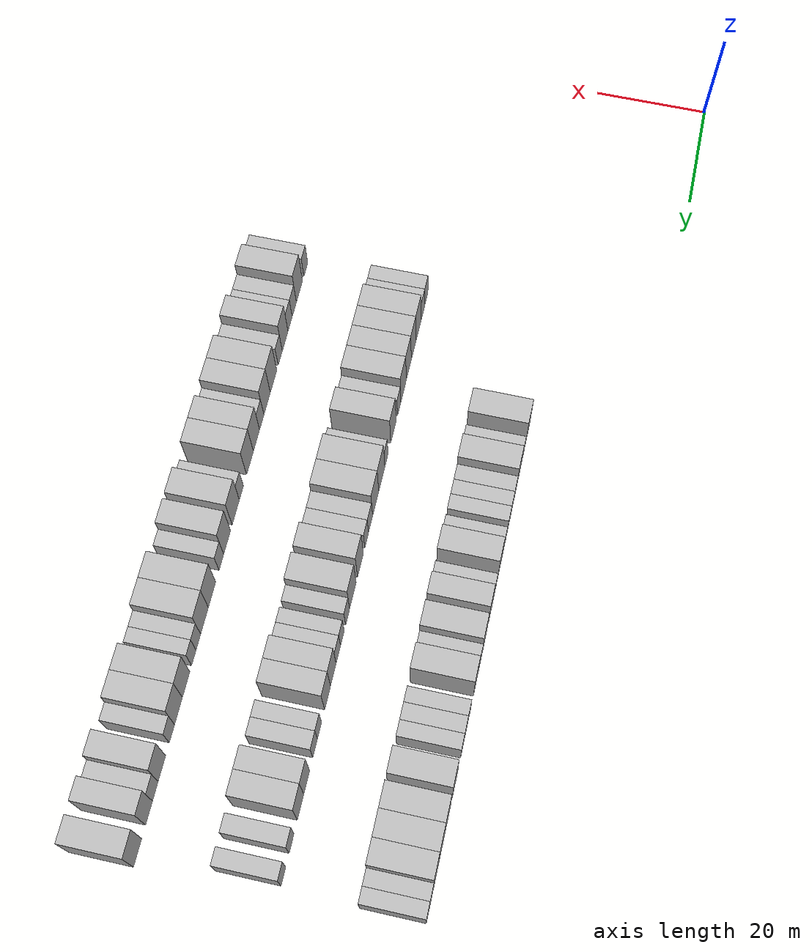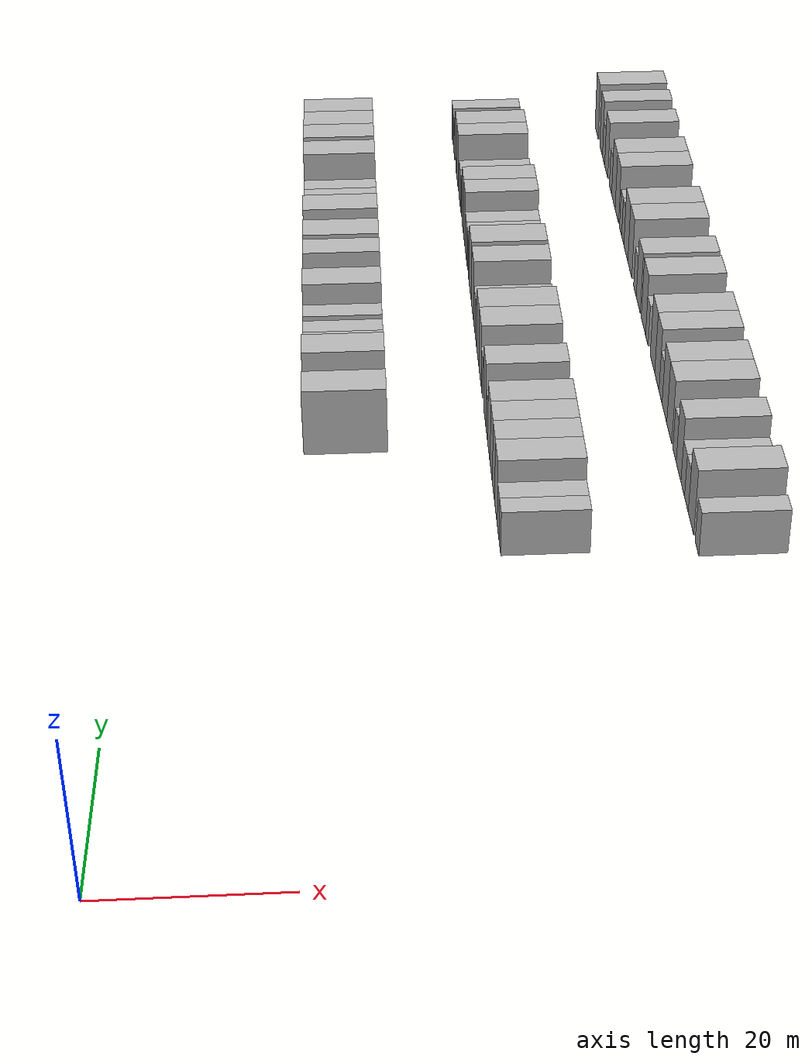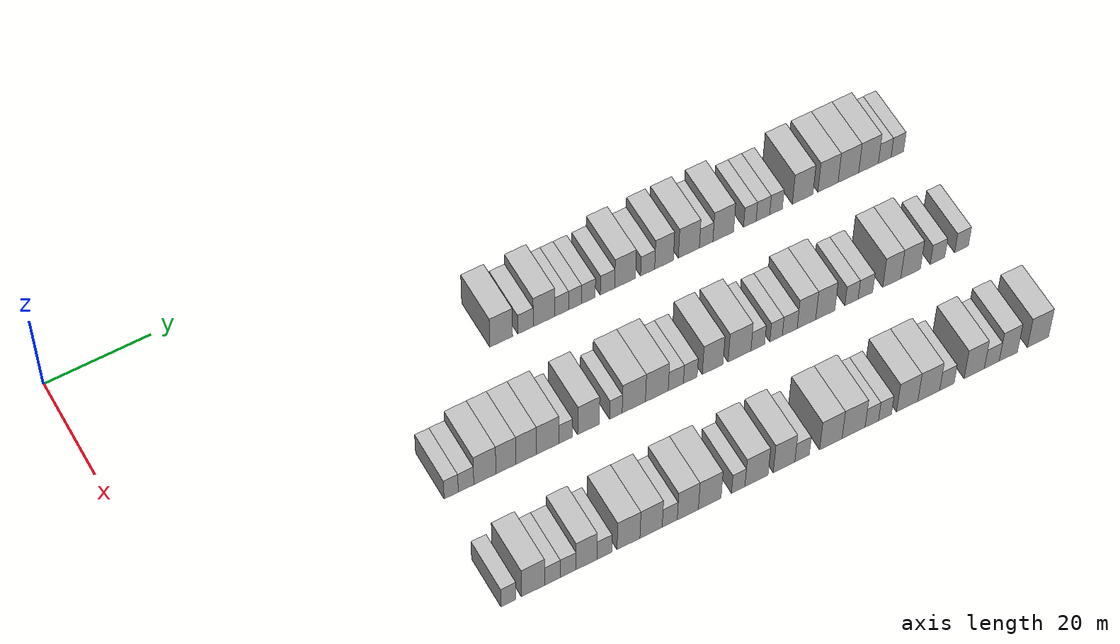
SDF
<sdf version="1.6">
 <world name="default">
  <model name="building_78">
   <static>1</static>
   <pose>25.0000 71.0234 0 0.000000 0.000000 0.000000</pose>
   <link name="link">
    <pose>0 0 4.50 0 0 0</pose>
    <collision name="collision"><geometry><box><size>10.0000 4.3698 9.0000</size></box></geometry></collision>
    <visual name="visual">
     <cast_shadows>0</cast_shadows>
     <geometry><box><size>10.0000 4.3698 9.0000</size></box></geometry>
     <material>
      <script>
       <uri>model://HANNAS_wall/materials/scripts</uri>
       <uri>model://HANNAS_wall/materials/textures</uri>
       <name>vrc/HANNAS_wall</name>
      </script>
     </material>
    </visual>
   </link>
  </model>
  <model name="building_79">
   <static>1</static>
   <pose>25.0000 75.6994 0 0.000000 0.000000 0.000000</pose>
   <link name="link">
    <pose>0 0 3.00 0 0 0</pose>
    <collision name="collision"><geometry><box><size>10.0000 2.9822 6.0000</size></box></geometry></collision>
    <visual name="visual">
     <cast_shadows>0</cast_shadows>
     <geometry><box><size>10.0000 2.9822 6.0000</size></box></geometry>
     <material>
      <script>
       <uri>model://HANNAS_wall/materials/scripts</uri>
       <uri>model://HANNAS_wall/materials/textures</uri>
       <name>vrc/HANNAS_wall</name>
      </script>
     </material>
    </visual>
   </link>
  </model>
  <model name="building_80">
   <static>1</static>
   <pose>25.0000 79.2633 0 0.000000 0.000000 0.000000</pose>
   <link name="link">
    <pose>0 0 4.50 0 0 0</pose>
    <collision name="collision"><geometry><box><size>10.0000 4.1458 9.0000</size></box></geometry></collision>
    <visual name="visual">
     <cast_shadows>0</cast_shadows>
     <geometry><box><size>10.0000 4.1458 9.0000</size></box></geometry>
     <material>
      <script>
       <uri>model://HANNAS_wall/materials/scripts</uri>
       <uri>model://HANNAS_wall/materials/textures</uri>
       <name>vrc/HANNAS_wall</name>
      </script>
     </material>
    </visual>
   </link>
  </model>
  <model name="building_81">
   <static>1</static>
   <pose>25.0000 82.6804 0 0.000000 0.000000 0.000000</pose>
   <link name="link">
    <pose>0 0 3.00 0 0 0</pose>
    <collision name="collision"><geometry><box><size>10.0000 2.6883 6.0000</size></box></geometry></collision>
    <visual name="visual">
     <cast_shadows>0</cast_shadows>
     <geometry><box><size>10.0000 2.6883 6.0000</size></box></geometry>
     <material>
      <script>
       <uri>model://HANNAS_wall/materials/scripts</uri>
       <uri>model://HANNAS_wall/materials/textures</uri>
       <name>vrc/HANNAS_wall</name>
      </script>
     </material>
    </visual>
   </link>
  </model>
  <model name="building_82">
   <static>1</static>
   <pose>25.0000 85.3012 0 0.000000 0.000000 0.000000</pose>
   <link name="link">
    <pose>0 0 3.00 0 0 0</pose>
    <collision name="collision"><geometry><box><size>10.0000 2.5534 6.0000</size></box></geometry></collision>
    <visual name="visual">
     <cast_shadows>0</cast_shadows>
     <geometry><box><size>10.0000 2.5534 6.0000</size></box></geometry>
     <material>
      <script>
       <uri>model://HANNAS_wall/materials/scripts</uri>
       <uri>model://HANNAS_wall/materials/textures</uri>
       <name>vrc/HANNAS_wall</name>
      </script>
     </material>
    </visual>
   </link>
  </model>
  <model name="building_83">
   <static>1</static>
   <pose>25.0000 87.8974 0 0.000000 0.000000 0.000000</pose>
   <link name="link">
    <pose>0 0 3.00 0 0 0</pose>
    <collision name="collision"><geometry><box><size>10.0000 2.6389 6.0000</size></box></geometry></collision>
    <visual name="visual">
     <cast_shadows>0</cast_shadows>
     <geometry><box><size>10.0000 2.6389 6.0000</size></box></geometry>
     <material>
      <script>
       <uri>model://HANNAS_wall/materials/scripts</uri>
       <uri>model://HANNAS_wall/materials/textures</uri>
       <name>vrc/HANNAS_wall</name>
      </script>
     </material>
    </visual>
   </link>
  </model>
  <model name="building_84">
   <static>1</static>
   <pose>25.0000 91.6191 0 0.000000 0.000000 0.000000</pose>
   <link name="link">
    <pose>0 0 3.00 0 0 0</pose>
    <collision name="collision"><geometry><box><size>10.0000 2.8044 6.0000</size></box></geometry></collision>
    <visual name="visual">
     <cast_shadows>0</cast_shadows>
     <geometry><box><size>10.0000 2.8044 6.0000</size></box></geometry>
     <material>
      <script>
       <uri>model://HANNAS_wall/materials/scripts</uri>
       <uri>model://HANNAS_wall/materials/textures</uri>
       <name>vrc/HANNAS_wall</name>
      </script>
     </material>
    </visual>
   </link>
  </model>
  <model name="building_85">
   <static>1</static>
   <pose>25.0000 95.0656 0 0.000000 0.000000 0.000000</pose>
   <link name="link">
    <pose>0 0 4.50 0 0 0</pose>
    <collision name="collision"><geometry><box><size>10.0000 4.0885 9.0000</size></box></geometry></collision>
    <visual name="visual">
     <cast_shadows>0</cast_shadows>
     <geometry><box><size>10.0000 4.0885 9.0000</size></box></geometry>
     <material>
      <script>
       <uri>model://HANNAS_wall/materials/scripts</uri>
       <uri>model://HANNAS_wall/materials/textures</uri>
       <name>vrc/HANNAS_wall</name>
      </script>
     </material>
    </visual>
   </link>
  </model>
  <model name="building_86">
   <static>1</static>
   <pose>25.0000 99.4901 0 0.000000 0.000000 0.000000</pose>
   <link name="link">
    <pose>0 0 3.00 0 0 0</pose>
    <collision name="collision"><geometry><box><size>10.0000 2.7606 6.0000</size></box></geometry></collision>
    <visual name="visual">
     <cast_shadows>0</cast_shadows>
     <geometry><box><size>10.0000 2.7606 6.0000</size></box></geometry>
     <material>
      <script>
       <uri>model://HANNAS_wall/materials/scripts</uri>
       <uri>model://HANNAS_wall/materials/textures</uri>
       <name>vrc/HANNAS_wall</name>
      </script>
     </material>
    </visual>
   </link>
  </model>
  <model name="building_87">
   <static>1</static>
   <pose>25.0000 102.7119 0 0.000000 0.000000 0.000000</pose>
   <link name="link">
    <pose>0 0 4.50 0 0 0</pose>
    <collision name="collision"><geometry><box><size>10.0000 3.6831 9.0000</size></box></geometry></collision>
    <visual name="visual">
     <cast_shadows>0</cast_shadows>
     <geometry><box><size>10.0000 3.6831 9.0000</size></box></geometry>
     <material>
      <script>
       <uri>model://HANNAS_wall/materials/scripts</uri>
       <uri>model://HANNAS_wall/materials/textures</uri>
       <name>vrc/HANNAS_wall</name>
      </script>
     </material>
    </visual>
   </link>
  </model>
  <model name="building_88">
   <static>1</static>
   <pose>25.0000 107.6281 0 0.000000 0.000000 0.000000</pose>
   <link name="link">
    <pose>0 0 4.50 0 0 0</pose>
    <collision name="collision"><geometry><box><size>10.0000 4.1492 9.0000</size></box></geometry></collision>
    <visual name="visual">
     <cast_shadows>0</cast_shadows>
     <geometry><box><size>10.0000 4.1492 9.0000</size></box></geometry>
     <material>
      <script>
       <uri>model://HANNAS_wall/materials/scripts</uri>
       <uri>model://HANNAS_wall/materials/textures</uri>
       <name>vrc/HANNAS_wall</name>
      </script>
     </material>
    </visual>
   </link>
  </model>
  <model name="building_89">
   <static>1</static>
   <pose>25.0000 111.0471 0 0.000000 0.000000 0.000000</pose>
   <link name="link">
    <pose>0 0 3.00 0 0 0</pose>
    <collision name="collision"><geometry><box><size>10.0000 2.6889 6.0000</size></box></geometry></collision>
    <visual name="visual">
     <cast_shadows>0</cast_shadows>
     <geometry><box><size>10.0000 2.6889 6.0000</size></box></geometry>
     <material>
      <script>
       <uri>model://HANNAS_wall/materials/scripts</uri>
       <uri>model://HANNAS_wall/materials/textures</uri>
       <name>vrc/HANNAS_wall</name>
      </script>
     </material>
    </visual>
   </link>
  </model>
  <model name="building_90">
   <static>1</static>
   <pose>25.0000 114.4517 0 0.000000 0.000000 0.000000</pose>
   <link name="link">
    <pose>0 0 4.50 0 0 0</pose>
    <collision name="collision"><geometry><box><size>10.0000 4.1201 9.0000</size></box></geometry></collision>
    <visual name="visual">
     <cast_shadows>0</cast_shadows>
     <geometry><box><size>10.0000 4.1201 9.0000</size></box></geometry>
     <material>
      <script>
       <uri>model://HANNAS_wall/materials/scripts</uri>
       <uri>model://HANNAS_wall/materials/textures</uri>
       <name>vrc/HANNAS_wall</name>
      </script>
     </material>
    </visual>
   </link>
  </model>
  <model name="building_91">
   <static>1</static>
   <pose>25.0000 119.7610 0 0.000000 0.000000 0.000000</pose>
   <link name="link">
    <pose>0 0 3.00 0 0 0</pose>
    <collision name="collision"><geometry><box><size>10.0000 2.4985 6.0000</size></box></geometry></collision>
    <visual name="visual">
     <cast_shadows>0</cast_shadows>
     <geometry><box><size>10.0000 2.4985 6.0000</size></box></geometry>
     <material>
      <script>
       <uri>model://HANNAS_wall/materials/scripts</uri>
       <uri>model://HANNAS_wall/materials/textures</uri>
       <name>vrc/HANNAS_wall</name>
      </script>
     </material>
    </visual>
   </link>
  </model>
  <model name="building_92">
   <static>1</static>
   <pose>25.0000 122.3716 0 0.000000 0.000000 0.000000</pose>
   <link name="link">
    <pose>0 0 3.00 0 0 0</pose>
    <collision name="collision"><geometry><box><size>10.0000 2.7227 6.0000</size></box></geometry></collision>
    <visual name="visual">
     <cast_shadows>0</cast_shadows>
     <geometry><box><size>10.0000 2.7227 6.0000</size></box></geometry>
     <material>
      <script>
       <uri>model://HANNAS_wall/materials/scripts</uri>
       <uri>model://HANNAS_wall/materials/textures</uri>
       <name>vrc/HANNAS_wall</name>
      </script>
     </material>
    </visual>
   </link>
  </model>
  <model name="building_93">
   <static>1</static>
   <pose>25.0000 125.0122 0 0.000000 0.000000 0.000000</pose>
   <link name="link">
    <pose>0 0 3.00 0 0 0</pose>
    <collision name="collision"><geometry><box><size>10.0000 2.5583 6.0000</size></box></geometry></collision>
    <visual name="visual">
     <cast_shadows>0</cast_shadows>
     <geometry><box><size>10.0000 2.5583 6.0000</size></box></geometry>
     <material>
      <script>
       <uri>model://HANNAS_wall/materials/scripts</uri>
       <uri>model://HANNAS_wall/materials/textures</uri>
       <name>vrc/HANNAS_wall</name>
      </script>
     </material>
    </visual>
   </link>
  </model>
  <model name="building_94">
   <static>1</static>
   <pose>25.0000 130.3652 0 0.000000 0.000000 0.000000</pose>
   <link name="link">
    <pose>0 0 4.50 0 0 0</pose>
    <collision name="collision"><geometry><box><size>10.0000 4.1477 9.0000</size></box></geometry></collision>
    <visual name="visual">
     <cast_shadows>0</cast_shadows>
     <geometry><box><size>10.0000 4.1477 9.0000</size></box></geometry>
     <material>
      <script>
       <uri>model://HANNAS_wall/materials/scripts</uri>
       <uri>model://HANNAS_wall/materials/textures</uri>
       <name>vrc/HANNAS_wall</name>
      </script>
     </material>
    </visual>
   </link>
  </model>
  <model name="building_95">
   <static>1</static>
   <pose>25.0000 135.4851 0 0.000000 0.000000 0.000000</pose>
   <link name="link">
    <pose>0 0 4.50 0 0 0</pose>
    <collision name="collision"><geometry><box><size>10.0000 4.0921 9.0000</size></box></geometry></collision>
    <visual name="visual">
     <cast_shadows>0</cast_shadows>
     <geometry><box><size>10.0000 4.0921 9.0000</size></box></geometry>
     <material>
      <script>
       <uri>model://HANNAS_wall/materials/scripts</uri>
       <uri>model://HANNAS_wall/materials/textures</uri>
       <name>vrc/HANNAS_wall</name>
      </script>
     </material>
    </visual>
   </link>
  </model>
  <model name="building_96">
   <static>1</static>
   <pose>25.0000 139.6172 0 0.000000 0.000000 0.000000</pose>
   <link name="link">
    <pose>0 0 4.50 0 0 0</pose>
    <collision name="collision"><geometry><box><size>10.0000 4.1720 9.0000</size></box></geometry></collision>
    <visual name="visual">
     <cast_shadows>0</cast_shadows>
     <geometry><box><size>10.0000 4.1720 9.0000</size></box></geometry>
     <material>
      <script>
       <uri>model://HANNAS_wall/materials/scripts</uri>
       <uri>model://HANNAS_wall/materials/textures</uri>
       <name>vrc/HANNAS_wall</name>
      </script>
     </material>
    </visual>
   </link>
  </model>
  <model name="building_97">
   <static>1</static>
   <pose>25.0000 143.7034 0 0.000000 0.000000 0.000000</pose>
   <link name="link">
    <pose>0 0 4.50 0 0 0</pose>
    <collision name="collision"><geometry><box><size>10.0000 4.0004 9.0000</size></box></geometry></collision>
    <visual name="visual">
     <cast_shadows>0</cast_shadows>
     <geometry><box><size>10.0000 4.0004 9.0000</size></box></geometry>
     <material>
      <script>
       <uri>model://HANNAS_wall/materials/scripts</uri>
       <uri>model://HANNAS_wall/materials/textures</uri>
       <name>vrc/HANNAS_wall</name>
      </script>
     </material>
    </visual>
   </link>
  </model>
  <model name="building_98">
   <static>1</static>
   <pose>25.0000 147.0011 0 0.000000 0.000000 0.000000</pose>
   <link name="link">
    <pose>0 0 3.00 0 0 0</pose>
    <collision name="collision"><geometry><box><size>10.0000 2.5950 6.0000</size></box></geometry></collision>
    <visual name="visual">
     <cast_shadows>0</cast_shadows>
     <geometry><box><size>10.0000 2.5950 6.0000</size></box></geometry>
     <material>
      <script>
       <uri>model://HANNAS_wall/materials/scripts</uri>
       <uri>model://HANNAS_wall/materials/textures</uri>
       <name>vrc/HANNAS_wall</name>
      </script>
     </material>
    </visual>
   </link>
  </model>
  <model name="building_99">
   <static>1</static>
   <pose>25.0000 149.5714 0 0.000000 0.000000 0.000000</pose>
   <link name="link">
    <pose>0 0 3.00 0 0 0</pose>
    <collision name="collision"><geometry><box><size>10.0000 2.5455 6.0000</size></box></geometry></collision>
    <visual name="visual">
     <cast_shadows>0</cast_shadows>
     <geometry><box><size>10.0000 2.5455 6.0000</size></box></geometry>
     <material>
      <script>
       <uri>model://HANNAS_wall/materials/scripts</uri>
       <uri>model://HANNAS_wall/materials/textures</uri>
       <name>vrc/HANNAS_wall</name>
      </script>
     </material>
    </visual>
   </link>
  </model>
  <model name="building_195">
   <static>1</static>
   <pose>47.0000 49.6333 0 0.000000 0.000000 0.000000</pose>
   <link name="link">
    <pose>0 0 3.00 0 0 0</pose>
    <collision name="collision"><geometry><box><size>10.0000 2.6566 6.0000</size></box></geometry></collision>
    <visual name="visual">
     <cast_shadows>0</cast_shadows>
     <geometry><box><size>10.0000 2.6566 6.0000</size></box></geometry>
     <material>
      <script>
       <uri>model://HANNAS_wall/materials/scripts</uri>
       <uri>model://HANNAS_wall/materials/textures</uri>
       <name>vrc/HANNAS_wall</name>
      </script>
     </material>
    </visual>
   </link>
  </model>
  <model name="building_196">
   <static>1</static>
   <pose>47.0000 52.4144 0 0.000000 0.000000 0.000000</pose>
   <link name="link">
    <pose>0 0 3.00 0 0 0</pose>
    <collision name="collision"><geometry><box><size>10.0000 2.9055 6.0000</size></box></geometry></collision>
    <visual name="visual">
     <cast_shadows>0</cast_shadows>
     <geometry><box><size>10.0000 2.9055 6.0000</size></box></geometry>
     <material>
      <script>
       <uri>model://HANNAS_wall/materials/scripts</uri>
       <uri>model://HANNAS_wall/materials/textures</uri>
       <name>vrc/HANNAS_wall</name>
      </script>
     </material>
    </visual>
   </link>
  </model>
  <model name="building_197">
   <static>1</static>
   <pose>47.0000 55.9484 0 0.000000 0.000000 0.000000</pose>
   <link name="link">
    <pose>0 0 4.50 0 0 0</pose>
    <collision name="collision"><geometry><box><size>10.0000 4.1625 9.0000</size></box></geometry></collision>
    <visual name="visual">
     <cast_shadows>0</cast_shadows>
     <geometry><box><size>10.0000 4.1625 9.0000</size></box></geometry>
     <material>
      <script>
       <uri>model://HANNAS_wall/materials/scripts</uri>
       <uri>model://HANNAS_wall/materials/textures</uri>
       <name>vrc/HANNAS_wall</name>
      </script>
     </material>
    </visual>
   </link>
  </model>
  <model name="building_198">
   <static>1</static>
   <pose>47.0000 59.9074 0 0.000000 0.000000 0.000000</pose>
   <link name="link">
    <pose>0 0 4.50 0 0 0</pose>
    <collision name="collision"><geometry><box><size>10.0000 3.7555 9.0000</size></box></geometry></collision>
    <visual name="visual">
     <cast_shadows>0</cast_shadows>
     <geometry><box><size>10.0000 3.7555 9.0000</size></box></geometry>
     <material>
      <script>
       <uri>model://HANNAS_wall/materials/scripts</uri>
       <uri>model://HANNAS_wall/materials/textures</uri>
       <name>vrc/HANNAS_wall</name>
      </script>
     </material>
    </visual>
   </link>
  </model>
  <model name="building_199">
   <static>1</static>
   <pose>47.0000 63.7292 0 0.000000 0.000000 0.000000</pose>
   <link name="link">
    <pose>0 0 4.50 0 0 0</pose>
    <collision name="collision"><geometry><box><size>10.0000 3.8882 9.0000</size></box></geometry></collision>
    <visual name="visual">
     <cast_shadows>0</cast_shadows>
     <geometry><box><size>10.0000 3.8882 9.0000</size></box></geometry>
     <material>
      <script>
       <uri>model://HANNAS_wall/materials/scripts</uri>
       <uri>model://HANNAS_wall/materials/textures</uri>
       <name>vrc/HANNAS_wall</name>
      </script>
     </material>
    </visual>
   </link>
  </model>
  <model name="building_200">
   <static>1</static>
   <pose>47.0000 67.7851 0 0.000000 0.000000 0.000000</pose>
   <link name="link">
    <pose>0 0 4.50 0 0 0</pose>
    <collision name="collision"><geometry><box><size>10.0000 4.2237 9.0000</size></box></geometry></collision>
    <visual name="visual">
     <cast_shadows>0</cast_shadows>
     <geometry><box><size>10.0000 4.2237 9.0000</size></box></geometry>
     <material>
      <script>
       <uri>model://HANNAS_wall/materials/scripts</uri>
       <uri>model://HANNAS_wall/materials/textures</uri>
       <name>vrc/HANNAS_wall</name>
      </script>
     </material>
    </visual>
   </link>
  </model>
  <model name="building_201">
   <static>1</static>
   <pose>47.0000 71.1967 0 0.000000 0.000000 0.000000</pose>
   <link name="link">
    <pose>0 0 3.00 0 0 0</pose>
    <collision name="collision"><geometry><box><size>10.0000 2.5994 6.0000</size></box></geometry></collision>
    <visual name="visual">
     <cast_shadows>0</cast_shadows>
     <geometry><box><size>10.0000 2.5994 6.0000</size></box></geometry>
     <material>
      <script>
       <uri>model://HANNAS_wall/materials/scripts</uri>
       <uri>model://HANNAS_wall/materials/textures</uri>
       <name>vrc/HANNAS_wall</name>
      </script>
     </material>
    </visual>
   </link>
  </model>
  <model name="building_202">
   <static>1</static>
   <pose>47.0000 75.5472 0 0.000000 0.000000 0.000000</pose>
   <link name="link">
    <pose>0 0 4.50 0 0 0</pose>
    <collision name="collision"><geometry><box><size>10.0000 4.1017 9.0000</size></box></geometry></collision>
    <visual name="visual">
     <cast_shadows>0</cast_shadows>
     <geometry><box><size>10.0000 4.1017 9.0000</size></box></geometry>
     <material>
      <script>
       <uri>model://HANNAS_wall/materials/scripts</uri>
       <uri>model://HANNAS_wall/materials/textures</uri>
       <name>vrc/HANNAS_wall</name>
      </script>
     </material>
    </visual>
   </link>
  </model>
  <model name="building_203">
   <static>1</static>
   <pose>47.0000 80.8000 0 0.000000 0.000000 0.000000</pose>
   <link name="link">
    <pose>0 0 3.00 0 0 0</pose>
    <collision name="collision"><geometry><box><size>10.0000 2.4039 6.0000</size></box></geometry></collision>
    <visual name="visual">
     <cast_shadows>0</cast_shadows>
     <geometry><box><size>10.0000 2.4039 6.0000</size></box></geometry>
     <material>
      <script>
       <uri>model://HANNAS_wall/materials/scripts</uri>
       <uri>model://HANNAS_wall/materials/textures</uri>
       <name>vrc/HANNAS_wall</name>
      </script>
     </material>
    </visual>
   </link>
  </model>
  <model name="building_204">
   <static>1</static>
   <pose>47.0000 84.2372 0 0.000000 0.000000 0.000000</pose>
   <link name="link">
    <pose>0 0 4.50 0 0 0</pose>
    <collision name="collision"><geometry><box><size>10.0000 4.4705 9.0000</size></box></geometry></collision>
    <visual name="visual">
     <cast_shadows>0</cast_shadows>
     <geometry><box><size>10.0000 4.4705 9.0000</size></box></geometry>
     <material>
      <script>
       <uri>model://HANNAS_wall/materials/scripts</uri>
       <uri>model://HANNAS_wall/materials/textures</uri>
       <name>vrc/HANNAS_wall</name>
      </script>
     </material>
    </visual>
   </link>
  </model>
  <model name="building_205">
   <static>1</static>
   <pose>47.0000 88.6711 0 0.000000 0.000000 0.000000</pose>
   <link name="link">
    <pose>0 0 4.50 0 0 0</pose>
    <collision name="collision"><geometry><box><size>10.0000 4.3973 9.0000</size></box></geometry></collision>
    <visual name="visual">
     <cast_shadows>0</cast_shadows>
     <geometry><box><size>10.0000 4.3973 9.0000</size></box></geometry>
     <material>
      <script>
       <uri>model://HANNAS_wall/materials/scripts</uri>
       <uri>model://HANNAS_wall/materials/textures</uri>
       <name>vrc/HANNAS_wall</name>
      </script>
     </material>
    </visual>
   </link>
  </model>
  <model name="building_206">
   <static>1</static>
   <pose>47.0000 92.3449 0 0.000000 0.000000 0.000000</pose>
   <link name="link">
    <pose>0 0 3.00 0 0 0</pose>
    <collision name="collision"><geometry><box><size>10.0000 2.9503 6.0000</size></box></geometry></collision>
    <visual name="visual">
     <cast_shadows>0</cast_shadows>
     <geometry><box><size>10.0000 2.9503 6.0000</size></box></geometry>
     <material>
      <script>
       <uri>model://HANNAS_wall/materials/scripts</uri>
       <uri>model://HANNAS_wall/materials/textures</uri>
       <name>vrc/HANNAS_wall</name>
      </script>
     </material>
    </visual>
   </link>
  </model>
  <model name="building_207">
   <static>1</static>
   <pose>47.0000 95.1509 0 0.000000 0.000000 0.000000</pose>
   <link name="link">
    <pose>0 0 3.00 0 0 0</pose>
    <collision name="collision"><geometry><box><size>10.0000 2.6617 6.0000</size></box></geometry></collision>
    <visual name="visual">
     <cast_shadows>0</cast_shadows>
     <geometry><box><size>10.0000 2.6617 6.0000</size></box></geometry>
     <material>
      <script>
       <uri>model://HANNAS_wall/materials/scripts</uri>
       <uri>model://HANNAS_wall/materials/textures</uri>
       <name>vrc/HANNAS_wall</name>
      </script>
     </material>
    </visual>
   </link>
  </model>
  <model name="building_208">
   <static>1</static>
   <pose>47.0000 99.4949 0 0.000000 0.000000 0.000000</pose>
   <link name="link">
    <pose>0 0 4.50 0 0 0</pose>
    <collision name="collision"><geometry><box><size>10.0000 4.0263 9.0000</size></box></geometry></collision>
    <visual name="visual">
     <cast_shadows>0</cast_shadows>
     <geometry><box><size>10.0000 4.0263 9.0000</size></box></geometry>
     <material>
      <script>
       <uri>model://HANNAS_wall/materials/scripts</uri>
       <uri>model://HANNAS_wall/materials/textures</uri>
       <name>vrc/HANNAS_wall</name>
      </script>
     </material>
    </visual>
   </link>
  </model>
  <model name="building_209">
   <static>1</static>
   <pose>47.0000 104.7348 0 0.000000 0.000000 0.000000</pose>
   <link name="link">
    <pose>0 0 4.50 0 0 0</pose>
    <collision name="collision"><geometry><box><size>10.0000 4.4535 9.0000</size></box></geometry></collision>
    <visual name="visual">
     <cast_shadows>0</cast_shadows>
     <geometry><box><size>10.0000 4.4535 9.0000</size></box></geometry>
     <material>
      <script>
       <uri>model://HANNAS_wall/materials/scripts</uri>
       <uri>model://HANNAS_wall/materials/textures</uri>
       <name>vrc/HANNAS_wall</name>
      </script>
     </material>
    </visual>
   </link>
  </model>
  <model name="building_210">
   <static>1</static>
   <pose>47.0000 108.3143 0 0.000000 0.000000 0.000000</pose>
   <link name="link">
    <pose>0 0 3.00 0 0 0</pose>
    <collision name="collision"><geometry><box><size>10.0000 2.7056 6.0000</size></box></geometry></collision>
    <visual name="visual">
     <cast_shadows>0</cast_shadows>
     <geometry><box><size>10.0000 2.7056 6.0000</size></box></geometry>
     <material>
      <script>
       <uri>model://HANNAS_wall/materials/scripts</uri>
       <uri>model://HANNAS_wall/materials/textures</uri>
       <name>vrc/HANNAS_wall</name>
      </script>
     </material>
    </visual>
   </link>
  </model>
  <model name="building_211">
   <static>1</static>
   <pose>47.0000 111.8982 0 0.000000 0.000000 0.000000</pose>
   <link name="link">
    <pose>0 0 3.00 0 0 0</pose>
    <collision name="collision"><geometry><box><size>10.0000 2.4622 6.0000</size></box></geometry></collision>
    <visual name="visual">
     <cast_shadows>0</cast_shadows>
     <geometry><box><size>10.0000 2.4622 6.0000</size></box></geometry>
     <material>
      <script>
       <uri>model://HANNAS_wall/materials/scripts</uri>
       <uri>model://HANNAS_wall/materials/textures</uri>
       <name>vrc/HANNAS_wall</name>
      </script>
     </material>
    </visual>
   </link>
  </model>
  <model name="building_212">
   <static>1</static>
   <pose>47.0000 114.5883 0 0.000000 0.000000 0.000000</pose>
   <link name="link">
    <pose>0 0 3.00 0 0 0</pose>
    <collision name="collision"><geometry><box><size>10.0000 2.9178 6.0000</size></box></geometry></collision>
    <visual name="visual">
     <cast_shadows>0</cast_shadows>
     <geometry><box><size>10.0000 2.9178 6.0000</size></box></geometry>
     <material>
      <script>
       <uri>model://HANNAS_wall/materials/scripts</uri>
       <uri>model://HANNAS_wall/materials/textures</uri>
       <name>vrc/HANNAS_wall</name>
      </script>
     </material>
    </visual>
   </link>
  </model>
  <model name="building_213">
   <static>1</static>
   <pose>47.0000 117.8799 0 0.000000 0.000000 0.000000</pose>
   <link name="link">
    <pose>0 0 4.50 0 0 0</pose>
    <collision name="collision"><geometry><box><size>10.0000 3.6653 9.0000</size></box></geometry></collision>
    <visual name="visual">
     <cast_shadows>0</cast_shadows>
     <geometry><box><size>10.0000 3.6653 9.0000</size></box></geometry>
     <material>
      <script>
       <uri>model://HANNAS_wall/materials/scripts</uri>
       <uri>model://HANNAS_wall/materials/textures</uri>
       <name>vrc/HANNAS_wall</name>
      </script>
     </material>
    </visual>
   </link>
  </model>
  <model name="building_214">
   <static>1</static>
   <pose>47.0000 121.6035 0 0.000000 0.000000 0.000000</pose>
   <link name="link">
    <pose>0 0 4.50 0 0 0</pose>
    <collision name="collision"><geometry><box><size>10.0000 3.7819 9.0000</size></box></geometry></collision>
    <visual name="visual">
     <cast_shadows>0</cast_shadows>
     <geometry><box><size>10.0000 3.7819 9.0000</size></box></geometry>
     <material>
      <script>
       <uri>model://HANNAS_wall/materials/scripts</uri>
       <uri>model://HANNAS_wall/materials/textures</uri>
       <name>vrc/HANNAS_wall</name>
      </script>
     </material>
    </visual>
   </link>
  </model>
  <model name="building_215">
   <static>1</static>
   <pose>47.0000 126.8154 0 0.000000 0.000000 0.000000</pose>
   <link name="link">
    <pose>0 0 3.00 0 0 0</pose>
    <collision name="collision"><geometry><box><size>10.0000 2.6420 6.0000</size></box></geometry></collision>
    <visual name="visual">
     <cast_shadows>0</cast_shadows>
     <geometry><box><size>10.0000 2.6420 6.0000</size></box></geometry>
     <material>
      <script>
       <uri>model://HANNAS_wall/materials/scripts</uri>
       <uri>model://HANNAS_wall/materials/textures</uri>
       <name>vrc/HANNAS_wall</name>
      </script>
     </material>
    </visual>
   </link>
  </model>
  <model name="building_216">
   <static>1</static>
   <pose>47.0000 129.5863 0 0.000000 0.000000 0.000000</pose>
   <link name="link">
    <pose>0 0 3.00 0 0 0</pose>
    <collision name="collision"><geometry><box><size>10.0000 2.8998 6.0000</size></box></geometry></collision>
    <visual name="visual">
     <cast_shadows>0</cast_shadows>
     <geometry><box><size>10.0000 2.8998 6.0000</size></box></geometry>
     <material>
      <script>
       <uri>model://HANNAS_wall/materials/scripts</uri>
       <uri>model://HANNAS_wall/materials/textures</uri>
       <name>vrc/HANNAS_wall</name>
      </script>
     </material>
    </visual>
   </link>
  </model>
  <model name="building_217">
   <static>1</static>
   <pose>47.0000 134.8419 0 0.000000 0.000000 0.000000</pose>
   <link name="link">
    <pose>0 0 4.50 0 0 0</pose>
    <collision name="collision"><geometry><box><size>10.0000 3.6112 9.0000</size></box></geometry></collision>
    <visual name="visual">
     <cast_shadows>0</cast_shadows>
     <geometry><box><size>10.0000 3.6112 9.0000</size></box></geometry>
     <material>
      <script>
       <uri>model://HANNAS_wall/materials/scripts</uri>
       <uri>model://HANNAS_wall/materials/textures</uri>
       <name>vrc/HANNAS_wall</name>
      </script>
     </material>
    </visual>
   </link>
  </model>
  <model name="building_218">
   <static>1</static>
   <pose>47.0000 138.6118 0 0.000000 0.000000 0.000000</pose>
   <link name="link">
    <pose>0 0 4.50 0 0 0</pose>
    <collision name="collision"><geometry><box><size>10.0000 3.9286 9.0000</size></box></geometry></collision>
    <visual name="visual">
     <cast_shadows>0</cast_shadows>
     <geometry><box><size>10.0000 3.9286 9.0000</size></box></geometry>
     <material>
      <script>
       <uri>model://HANNAS_wall/materials/scripts</uri>
       <uri>model://HANNAS_wall/materials/textures</uri>
       <name>vrc/HANNAS_wall</name>
      </script>
     </material>
    </visual>
   </link>
  </model>
  <model name="building_219">
   <static>1</static>
   <pose>47.0000 144.0372 0 0.000000 0.000000 0.000000</pose>
   <link name="link">
    <pose>0 0 3.00 0 0 0</pose>
    <collision name="collision"><geometry><box><size>10.0000 2.9223 6.0000</size></box></geometry></collision>
    <visual name="visual">
     <cast_shadows>0</cast_shadows>
     <geometry><box><size>10.0000 2.9223 6.0000</size></box></geometry>
     <material>
      <script>
       <uri>model://HANNAS_wall/materials/scripts</uri>
       <uri>model://HANNAS_wall/materials/textures</uri>
       <name>vrc/HANNAS_wall</name>
      </script>
     </material>
    </visual>
   </link>
  </model>
  <model name="building_220">
   <static>1</static>
   <pose>47.0000 148.8856 0 0.000000 0.000000 0.000000</pose>
   <link name="link">
    <pose>0 0 3.00 0 0 0</pose>
    <collision name="collision"><geometry><box><size>10.0000 2.7744 6.0000</size></box></geometry></collision>
    <visual name="visual">
     <cast_shadows>0</cast_shadows>
     <geometry><box><size>10.0000 2.7744 6.0000</size></box></geometry>
     <material>
      <script>
       <uri>model://HANNAS_wall/materials/scripts</uri>
       <uri>model://HANNAS_wall/materials/textures</uri>
       <name>vrc/HANNAS_wall</name>
      </script>
     </material>
    </visual>
   </link>
  </model>
  <model name="building_320">
   <static>1</static>
   <pose>69.0000 48.3472 0 0.000000 0.000000 0.000000</pose>
   <link name="link">
    <pose>0 0 3.00 0 0 0</pose>
    <collision name="collision"><geometry><box><size>10.0000 2.7768 6.0000</size></box></geometry></collision>
    <visual name="visual">
     <cast_shadows>0</cast_shadows>
     <geometry><box><size>10.0000 2.7768 6.0000</size></box></geometry>
     <material>
      <script>
       <uri>model://HANNAS_wall/materials/scripts</uri>
       <uri>model://HANNAS_wall/materials/textures</uri>
       <name>vrc/HANNAS_wall</name>
      </script>
     </material>
    </visual>
   </link>
  </model>
  <model name="building_321">
   <static>1</static>
   <pose>69.0000 52.8752 0 0.000000 0.000000 0.000000</pose>
   <link name="link">
    <pose>0 0 4.50 0 0 0</pose>
    <collision name="collision"><geometry><box><size>10.0000 4.2791 9.0000</size></box></geometry></collision>
    <visual name="visual">
     <cast_shadows>0</cast_shadows>
     <geometry><box><size>10.0000 4.2791 9.0000</size></box></geometry>
     <material>
      <script>
       <uri>model://HANNAS_wall/materials/scripts</uri>
       <uri>model://HANNAS_wall/materials/textures</uri>
       <name>vrc/HANNAS_wall</name>
      </script>
     </material>
    </visual>
   </link>
  </model>
  <model name="building_322">
   <static>1</static>
   <pose>69.0000 56.4908 0 0.000000 0.000000 0.000000</pose>
   <link name="link">
    <pose>0 0 3.00 0 0 0</pose>
    <collision name="collision"><geometry><box><size>10.0000 2.9522 6.0000</size></box></geometry></collision>
    <visual name="visual">
     <cast_shadows>0</cast_shadows>
     <geometry><box><size>10.0000 2.9522 6.0000</size></box></geometry>
     <material>
      <script>
       <uri>model://HANNAS_wall/materials/scripts</uri>
       <uri>model://HANNAS_wall/materials/textures</uri>
       <name>vrc/HANNAS_wall</name>
      </script>
     </material>
    </visual>
   </link>
  </model>
  <model name="building_323">
   <static>1</static>
   <pose>69.0000 59.4131 0 0.000000 0.000000 0.000000</pose>
   <link name="link">
    <pose>0 0 3.00 0 0 0</pose>
    <collision name="collision"><geometry><box><size>10.0000 2.8923 6.0000</size></box></geometry></collision>
    <visual name="visual">
     <cast_shadows>0</cast_shadows>
     <geometry><box><size>10.0000 2.8923 6.0000</size></box></geometry>
     <material>
      <script>
       <uri>model://HANNAS_wall/materials/scripts</uri>
       <uri>model://HANNAS_wall/materials/textures</uri>
       <name>vrc/HANNAS_wall</name>
      </script>
     </material>
    </visual>
   </link>
  </model>
  <model name="building_324">
   <static>1</static>
   <pose>69.0000 62.8121 0 0.000000 0.000000 0.000000</pose>
   <link name="link">
    <pose>0 0 4.50 0 0 0</pose>
    <collision name="collision"><geometry><box><size>10.0000 3.9057 9.0000</size></box></geometry></collision>
    <visual name="visual">
     <cast_shadows>0</cast_shadows>
     <geometry><box><size>10.0000 3.9057 9.0000</size></box></geometry>
     <material>
      <script>
       <uri>model://HANNAS_wall/materials/scripts</uri>
       <uri>model://HANNAS_wall/materials/textures</uri>
       <name>vrc/HANNAS_wall</name>
      </script>
     </material>
    </visual>
   </link>
  </model>
  <model name="building_325">
   <static>1</static>
   <pose>69.0000 66.1567 0 0.000000 0.000000 0.000000</pose>
   <link name="link">
    <pose>0 0 3.00 0 0 0</pose>
    <collision name="collision"><geometry><box><size>10.0000 2.7836 6.0000</size></box></geometry></collision>
    <visual name="visual">
     <cast_shadows>0</cast_shadows>
     <geometry><box><size>10.0000 2.7836 6.0000</size></box></geometry>
     <material>
      <script>
       <uri>model://HANNAS_wall/materials/scripts</uri>
       <uri>model://HANNAS_wall/materials/textures</uri>
       <name>vrc/HANNAS_wall</name>
      </script>
     </material>
    </visual>
   </link>
  </model>
  <model name="building_326">
   <static>1</static>
   <pose>69.0000 70.7026 0 0.000000 0.000000 0.000000</pose>
   <link name="link">
    <pose>0 0 4.50 0 0 0</pose>
    <collision name="collision"><geometry><box><size>10.0000 4.3081 9.0000</size></box></geometry></collision>
    <visual name="visual">
     <cast_shadows>0</cast_shadows>
     <geometry><box><size>10.0000 4.3081 9.0000</size></box></geometry>
     <material>
      <script>
       <uri>model://HANNAS_wall/materials/scripts</uri>
       <uri>model://HANNAS_wall/materials/textures</uri>
       <name>vrc/HANNAS_wall</name>
      </script>
     </material>
    </visual>
   </link>
  </model>
  <model name="building_327">
   <static>1</static>
   <pose>69.0000 74.9596 0 0.000000 0.000000 0.000000</pose>
   <link name="link">
    <pose>0 0 4.50 0 0 0</pose>
    <collision name="collision"><geometry><box><size>10.0000 4.2059 9.0000</size></box></geometry></collision>
    <visual name="visual">
     <cast_shadows>0</cast_shadows>
     <geometry><box><size>10.0000 4.2059 9.0000</size></box></geometry>
     <material>
      <script>
       <uri>model://HANNAS_wall/materials/scripts</uri>
       <uri>model://HANNAS_wall/materials/textures</uri>
       <name>vrc/HANNAS_wall</name>
      </script>
     </material>
    </visual>
   </link>
  </model>
  <model name="building_328">
   <static>1</static>
   <pose>69.0000 78.4862 0 0.000000 0.000000 0.000000</pose>
   <link name="link">
    <pose>0 0 3.00 0 0 0</pose>
    <collision name="collision"><geometry><box><size>10.0000 2.8473 6.0000</size></box></geometry></collision>
    <visual name="visual">
     <cast_shadows>0</cast_shadows>
     <geometry><box><size>10.0000 2.8473 6.0000</size></box></geometry>
     <material>
      <script>
       <uri>model://HANNAS_wall/materials/scripts</uri>
       <uri>model://HANNAS_wall/materials/textures</uri>
       <name>vrc/HANNAS_wall</name>
      </script>
     </material>
    </visual>
   </link>
  </model>
  <model name="building_329">
   <static>1</static>
   <pose>69.0000 81.9163 0 0.000000 0.000000 0.000000</pose>
   <link name="link">
    <pose>0 0 4.50 0 0 0</pose>
    <collision name="collision"><geometry><box><size>10.0000 4.0131 9.0000</size></box></geometry></collision>
    <visual name="visual">
     <cast_shadows>0</cast_shadows>
     <geometry><box><size>10.0000 4.0131 9.0000</size></box></geometry>
     <material>
      <script>
       <uri>model://HANNAS_wall/materials/scripts</uri>
       <uri>model://HANNAS_wall/materials/textures</uri>
       <name>vrc/HANNAS_wall</name>
      </script>
     </material>
    </visual>
   </link>
  </model>
  <model name="building_330">
   <static>1</static>
   <pose>69.0000 86.0824 0 0.000000 0.000000 0.000000</pose>
   <link name="link">
    <pose>0 0 4.50 0 0 0</pose>
    <collision name="collision"><geometry><box><size>10.0000 4.3190 9.0000</size></box></geometry></collision>
    <visual name="visual">
     <cast_shadows>0</cast_shadows>
     <geometry><box><size>10.0000 4.3190 9.0000</size></box></geometry>
     <material>
      <script>
       <uri>model://HANNAS_wall/materials/scripts</uri>
       <uri>model://HANNAS_wall/materials/textures</uri>
       <name>vrc/HANNAS_wall</name>
      </script>
     </material>
    </visual>
   </link>
  </model>
  <model name="building_331">
   <static>1</static>
   <pose>69.0000 91.5206 0 0.000000 0.000000 0.000000</pose>
   <link name="link">
    <pose>0 0 3.00 0 0 0</pose>
    <collision name="collision"><geometry><box><size>10.0000 2.5574 6.0000</size></box></geometry></collision>
    <visual name="visual">
     <cast_shadows>0</cast_shadows>
     <geometry><box><size>10.0000 2.5574 6.0000</size></box></geometry>
     <material>
      <script>
       <uri>model://HANNAS_wall/materials/scripts</uri>
       <uri>model://HANNAS_wall/materials/textures</uri>
       <name>vrc/HANNAS_wall</name>
      </script>
     </material>
    </visual>
   </link>
  </model>
  <model name="building_332">
   <static>1</static>
   <pose>69.0000 95.0188 0 0.000000 0.000000 0.000000</pose>
   <link name="link">
    <pose>0 0 4.50 0 0 0</pose>
    <collision name="collision"><geometry><box><size>10.0000 4.4391 9.0000</size></box></geometry></collision>
    <visual name="visual">
     <cast_shadows>0</cast_shadows>
     <geometry><box><size>10.0000 4.4391 9.0000</size></box></geometry>
     <material>
      <script>
       <uri>model://HANNAS_wall/materials/scripts</uri>
       <uri>model://HANNAS_wall/materials/textures</uri>
       <name>vrc/HANNAS_wall</name>
      </script>
     </material>
    </visual>
   </link>
  </model>
  <model name="building_333">
   <static>1</static>
   <pose>69.0000 100.3179 0 0.000000 0.000000 0.000000</pose>
   <link name="link">
    <pose>0 0 4.50 0 0 0</pose>
    <collision name="collision"><geometry><box><size>10.0000 4.1592 9.0000</size></box></geometry></collision>
    <visual name="visual">
     <cast_shadows>0</cast_shadows>
     <geometry><box><size>10.0000 4.1592 9.0000</size></box></geometry>
     <material>
      <script>
       <uri>model://HANNAS_wall/materials/scripts</uri>
       <uri>model://HANNAS_wall/materials/textures</uri>
       <name>vrc/HANNAS_wall</name>
      </script>
     </material>
    </visual>
   </link>
  </model>
  <model name="building_334">
   <static>1</static>
   <pose>69.0000 103.7962 0 0.000000 0.000000 0.000000</pose>
   <link name="link">
    <pose>0 0 3.00 0 0 0</pose>
    <collision name="collision"><geometry><box><size>10.0000 2.7973 6.0000</size></box></geometry></collision>
    <visual name="visual">
     <cast_shadows>0</cast_shadows>
     <geometry><box><size>10.0000 2.7973 6.0000</size></box></geometry>
     <material>
      <script>
       <uri>model://HANNAS_wall/materials/scripts</uri>
       <uri>model://HANNAS_wall/materials/textures</uri>
       <name>vrc/HANNAS_wall</name>
      </script>
     </material>
    </visual>
   </link>
  </model>
  <model name="building_335">
   <static>1</static>
   <pose>69.0000 109.3686 0 0.000000 0.000000 0.000000</pose>
   <link name="link">
    <pose>0 0 4.50 0 0 0</pose>
    <collision name="collision"><geometry><box><size>10.0000 4.3476 9.0000</size></box></geometry></collision>
    <visual name="visual">
     <cast_shadows>0</cast_shadows>
     <geometry><box><size>10.0000 4.3476 9.0000</size></box></geometry>
     <material>
      <script>
       <uri>model://HANNAS_wall/materials/scripts</uri>
       <uri>model://HANNAS_wall/materials/textures</uri>
       <name>vrc/HANNAS_wall</name>
      </script>
     </material>
    </visual>
   </link>
  </model>
  <model name="building_336">
   <static>1</static>
   <pose>69.0000 113.7807 0 0.000000 0.000000 0.000000</pose>
   <link name="link">
    <pose>0 0 4.50 0 0 0</pose>
    <collision name="collision"><geometry><box><size>10.0000 4.4765 9.0000</size></box></geometry></collision>
    <visual name="visual">
     <cast_shadows>0</cast_shadows>
     <geometry><box><size>10.0000 4.4765 9.0000</size></box></geometry>
     <material>
      <script>
       <uri>model://HANNAS_wall/materials/scripts</uri>
       <uri>model://HANNAS_wall/materials/textures</uri>
       <name>vrc/HANNAS_wall</name>
      </script>
     </material>
    </visual>
   </link>
  </model>
  <model name="building_337">
   <static>1</static>
   <pose>69.0000 117.3324 0 0.000000 0.000000 0.000000</pose>
   <link name="link">
    <pose>0 0 3.00 0 0 0</pose>
    <collision name="collision"><geometry><box><size>10.0000 2.6270 6.0000</size></box></geometry></collision>
    <visual name="visual">
     <cast_shadows>0</cast_shadows>
     <geometry><box><size>10.0000 2.6270 6.0000</size></box></geometry>
     <material>
      <script>
       <uri>model://HANNAS_wall/materials/scripts</uri>
       <uri>model://HANNAS_wall/materials/textures</uri>
       <name>vrc/HANNAS_wall</name>
      </script>
     </material>
    </visual>
   </link>
  </model>
  <model name="building_338">
   <static>1</static>
   <pose>69.0000 119.9136 0 0.000000 0.000000 0.000000</pose>
   <link name="link">
    <pose>0 0 3.00 0 0 0</pose>
    <collision name="collision"><geometry><box><size>10.0000 2.5353 6.0000</size></box></geometry></collision>
    <visual name="visual">
     <cast_shadows>0</cast_shadows>
     <geometry><box><size>10.0000 2.5353 6.0000</size></box></geometry>
     <material>
      <script>
       <uri>model://HANNAS_wall/materials/scripts</uri>
       <uri>model://HANNAS_wall/materials/textures</uri>
       <name>vrc/HANNAS_wall</name>
      </script>
     </material>
    </visual>
   </link>
  </model>
  <model name="building_339">
   <static>1</static>
   <pose>69.0000 124.2712 0 0.000000 0.000000 0.000000</pose>
   <link name="link">
    <pose>0 0 4.50 0 0 0</pose>
    <collision name="collision"><geometry><box><size>10.0000 4.1799 9.0000</size></box></geometry></collision>
    <visual name="visual">
     <cast_shadows>0</cast_shadows>
     <geometry><box><size>10.0000 4.1799 9.0000</size></box></geometry>
     <material>
      <script>
       <uri>model://HANNAS_wall/materials/scripts</uri>
       <uri>model://HANNAS_wall/materials/textures</uri>
       <name>vrc/HANNAS_wall</name>
      </script>
     </material>
    </visual>
   </link>
  </model>
  <model name="building_340">
   <static>1</static>
   <pose>69.0000 128.5124 0 0.000000 0.000000 0.000000</pose>
   <link name="link">
    <pose>0 0 4.50 0 0 0</pose>
    <collision name="collision"><geometry><box><size>10.0000 4.3024 9.0000</size></box></geometry></collision>
    <visual name="visual">
     <cast_shadows>0</cast_shadows>
     <geometry><box><size>10.0000 4.3024 9.0000</size></box></geometry>
     <material>
      <script>
       <uri>model://HANNAS_wall/materials/scripts</uri>
       <uri>model://HANNAS_wall/materials/textures</uri>
       <name>vrc/HANNAS_wall</name>
      </script>
     </material>
    </visual>
   </link>
  </model>
  <model name="building_341">
   <static>1</static>
   <pose>69.0000 132.0905 0 0.000000 0.000000 0.000000</pose>
   <link name="link">
    <pose>0 0 3.00 0 0 0</pose>
    <collision name="collision"><geometry><box><size>10.0000 2.8539 6.0000</size></box></geometry></collision>
    <visual name="visual">
     <cast_shadows>0</cast_shadows>
     <geometry><box><size>10.0000 2.8539 6.0000</size></box></geometry>
     <material>
      <script>
       <uri>model://HANNAS_wall/materials/scripts</uri>
       <uri>model://HANNAS_wall/materials/textures</uri>
       <name>vrc/HANNAS_wall</name>
      </script>
     </material>
    </visual>
   </link>
  </model>
  <model name="building_342">
   <static>1</static>
   <pose>69.0000 137.5180 0 0.000000 0.000000 0.000000</pose>
   <link name="link">
    <pose>0 0 4.50 0 0 0</pose>
    <collision name="collision"><geometry><box><size>10.0000 4.0012 9.0000</size></box></geometry></collision>
    <visual name="visual">
     <cast_shadows>0</cast_shadows>
     <geometry><box><size>10.0000 4.0012 9.0000</size></box></geometry>
     <material>
      <script>
       <uri>model://HANNAS_wall/materials/scripts</uri>
       <uri>model://HANNAS_wall/materials/textures</uri>
       <name>vrc/HANNAS_wall</name>
      </script>
     </material>
    </visual>
   </link>
  </model>
  <model name="building_343">
   <static>1</static>
   <pose>69.0000 141.0060 0 0.000000 0.000000 0.000000</pose>
   <link name="link">
    <pose>0 0 3.00 0 0 0</pose>
    <collision name="collision"><geometry><box><size>10.0000 2.9747 6.0000</size></box></geometry></collision>
    <visual name="visual">
     <cast_shadows>0</cast_shadows>
     <geometry><box><size>10.0000 2.9747 6.0000</size></box></geometry>
     <material>
      <script>
       <uri>model://HANNAS_wall/materials/scripts</uri>
       <uri>model://HANNAS_wall/materials/textures</uri>
       <name>vrc/HANNAS_wall</name>
      </script>
     </material>
    </visual>
   </link>
  </model>
  <model name="building_344">
   <static>1</static>
   <pose>69.0000 144.3057 0 0.000000 0.000000 0.000000</pose>
   <link name="link">
    <pose>0 0 4.50 0 0 0</pose>
    <collision name="collision"><geometry><box><size>10.0000 3.6249 9.0000</size></box></geometry></collision>
    <visual name="visual">
     <cast_shadows>0</cast_shadows>
     <geometry><box><size>10.0000 3.6249 9.0000</size></box></geometry>
     <material>
      <script>
       <uri>model://HANNAS_wall/materials/scripts</uri>
       <uri>model://HANNAS_wall/materials/textures</uri>
       <name>vrc/HANNAS_wall</name>
      </script>
     </material>
    </visual>
   </link>
  </model>
  <model name="building_345">
   <static>1</static>
   <pose>69.0000 150.2309 0 0.000000 0.000000 0.000000</pose>
   <link name="link">
    <pose>0 0 4.50 0 0 0</pose>
    <collision name="collision"><geometry><box><size>10.0000 4.2254 9.0000</size></box></geometry></collision>
    <visual name="visual">
     <cast_shadows>0</cast_shadows>
     <geometry><box><size>10.0000 4.2254 9.0000</size></box></geometry>
     <material>
      <script>
       <uri>model://HANNAS_wall/materials/scripts</uri>
       <uri>model://HANNAS_wall/materials/textures</uri>
       <name>vrc/HANNAS_wall</name>
      </script>
     </material>
    </visual>
   </link>
  </model>
 </world>
</sdf>
